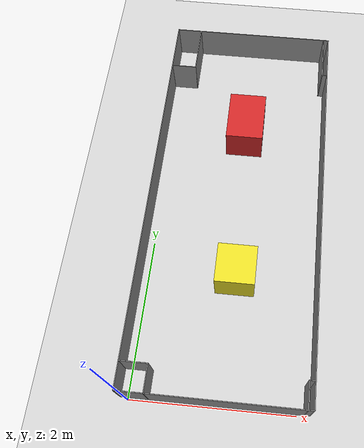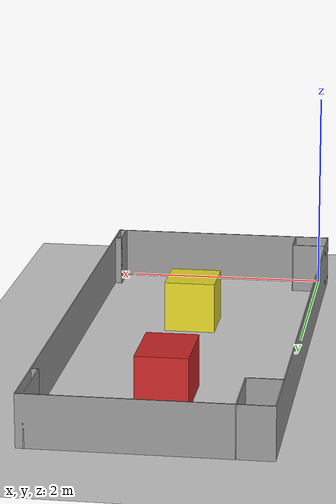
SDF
<sdf version="1.7">
 <world name="default">
  <light name="sun" type="directional">
   <pose>0 0 10 0 -0 0</pose>
   <diffuse>0.8 0.8 0.8 1</diffuse>
   <specular>0.2 0.2 0.2 1</specular>
   <attenuation>
    <range>1000</range>
    <constant>0.9</constant>
    <linear>0.01</linear>
    <quadratic>0.001</quadratic>
   </attenuation>
   <direction>-0.5 0.1 -0.9</direction>
   <spot><inner_angle>0</inner_angle><outer_angle>0</outer_angle><falloff>0</falloff></spot>
  </light>
  <model name="ground_plane">
   <static>1</static>
   <link name="link">
    <collision name="collision">
     <geometry><plane><normal>0 0 1</normal><size>100 100</size></plane></geometry>
     <surface>
      <contact><collide_bitmask>65535</collide_bitmask></contact>
      <friction><ode><mu>100</mu><mu2>50</mu2></ode></friction>
     </surface>
    </collision>
    <visual name="visual">
     <cast_shadows>0</cast_shadows>
     <geometry><plane><normal>0 0 1</normal><size>100 100</size></plane></geometry>
     <material>
      <script><uri>file://media/materials/scripts/gazebo.material</uri><name>Gazebo/Grey</name></script>
     </material>
    </visual>
   </link>
  </model>
  <gravity>0 0 -9.8</gravity>
  <magnetic_field>6e-06 2.3e-05 -4.2e-05</magnetic_field>
  <atmosphere type="adiabatic"/>
  <physics type="ode">
   <max_step_size>0.001</max_step_size>
   <real_time_factor>1</real_time_factor>
   <real_time_update_rate>1000</real_time_update_rate>
  </physics>
  <scene><ambient>0.4 0.4 0.4 1</ambient><background>0.7 0.7 0.7 1</background><shadows>1</shadows></scene>
  <spherical_coordinates>
   <surface_model>EARTH_WGS84</surface_model>
   <latitude_deg>0</latitude_deg>
   <longitude_deg>0</longitude_deg>
   <elevation>0</elevation>
   <heading_deg>0</heading_deg>
  </spherical_coordinates>
  <model name="c205">
   <pose>1.03173 2.65805 0 0 -0 0</pose>
   <link name="Wall_12">
    <collision name="Wall_12_Collision">
     <geometry><box><size>5.27 0.01 0.5</size></box></geometry>
     <pose>0 0 0.25 0 -0 0</pose>
    </collision>
    <visual name="Wall_12_Visual">
     <pose>0 0 0.25 0 -0 0</pose>
     <geometry><box><size>5.27 0.01 0.5</size></box></geometry>
     <material>
      <script><uri>file://media/materials/scripts/gazebo.material</uri><name>Gazebo/Grey</name></script>
      <ambient>1 1 1 0.1</ambient>
     </material>
     <meta><layer>0</layer></meta>
    </visual>
    <pose>-1.125 0.000538 0 0 -0 1.5708</pose>
   </link>
   <link name="Wall_17">
    <collision name="Wall_17_Collision">
     <geometry><box><size>2.26 0.01 0.5</size></box></geometry>
     <pose>0 0 0.25 0 -0 0</pose>
    </collision>
    <visual name="Wall_17_Visual">
     <pose>0 0 0.25 0 -0 0</pose>
     <geometry><box><size>2.26 0.01 0.5</size></box></geometry>
     <material>
      <script><uri>file://media/materials/scripts/gazebo.material</uri><name>Gazebo/Grey</name></script>
      <ambient>1 1 1 0.1</ambient>
     </material>
     <meta><layer>0</layer></meta>
    </visual>
    <pose>-0 2.63054 0 0 -0 0</pose>
   </link>
   <link name="Wall_19">
    <collision name="Wall_19_Collision">
     <geometry><box><size>5.27 0.01 0.5</size></box></geometry>
     <pose>0 0 0.25 0 -0 0</pose>
    </collision>
    <visual name="Wall_19_Visual">
     <pose>0 0 0.25 0 -0 0</pose>
     <geometry><box><size>5.27 0.01 0.5</size></box></geometry>
     <material>
      <script><uri>file://media/materials/scripts/gazebo.material</uri><name>Gazebo/Grey</name></script>
      <ambient>1 1 1 0.1</ambient>
     </material>
     <meta><layer>0</layer></meta>
    </visual>
    <pose>1.125 0.000538 0 0 -0 -1.5708</pose>
   </link>
   <link name="Wall_2">
    <collision name="Wall_2_Collision">
     <geometry><box><size>2.26 0.01 0.5</size></box></geometry>
     <pose>0 0 0.25 0 -0 0</pose>
    </collision>
    <visual name="Wall_2_Visual">
     <pose>0 0 0.25 0 -0 0</pose>
     <geometry><box><size>2.26 0.01 0.5</size></box></geometry>
     <material>
      <script><uri>file://media/materials/scripts/gazebo.material</uri><name>Gazebo/Grey</name></script>
      <ambient>1 1 1 0.1</ambient>
     </material>
     <meta><layer>0</layer></meta>
    </visual>
    <pose>-0 -2.62946 0 0 -0 0</pose>
   </link>
   <link name="Wall_27">
    <collision name="Wall_27_Collision">
     <geometry><box><size>0.35 0.01 0.5</size></box></geometry>
     <pose>0 0 0.25 0 -0 0</pose>
    </collision>
    <visual name="Wall_27_Visual">
     <pose>0 0 0.25 0 -0 0</pose>
     <geometry><box><size>0.35 0.01 0.5</size></box></geometry>
     <material>
      <script><uri>file://media/materials/scripts/gazebo.material</uri><name>Gazebo/Grey</name></script>
      <ambient>1 1 1 0.1</ambient>
     </material>
     <meta><layer>0</layer></meta>
    </visual>
    <pose>-0.955 -2.30046 0 0 -0 0</pose>
   </link>
   <link name="Wall_28">
    <collision name="Wall_28_Collision">
     <geometry><box><size>0.340151 0.01 0.5</size></box></geometry>
     <pose>0 0 0.25 0 -0 0</pose>
    </collision>
    <visual name="Wall_28_Visual">
     <pose>0 0 0.25 0 -0 0</pose>
     <geometry><box><size>0.340151 0.01 0.5</size></box></geometry>
     <material>
      <script><uri>file://media/materials/scripts/gazebo.material</uri><name>Gazebo/Grey</name></script>
      <ambient>1 1 1 0.1</ambient>
     </material>
     <meta><layer>0</layer></meta>
    </visual>
    <pose>-0.785 -2.46546 0 0 -0 -1.5708</pose>
   </link>
   <link name="Wall_30">
    <collision name="Wall_30_Collision">
     <geometry><box><size>0.35 0.01 0.5</size></box></geometry>
     <pose>0 0 0.25 0 -0 0</pose>
    </collision>
    <visual name="Wall_30_Visual">
     <pose>0 0 0.25 0 -0 0</pose>
     <geometry><box><size>0.35 0.01 0.5</size></box></geometry>
     <material>
      <script><uri>file://media/materials/scripts/gazebo.material</uri><name>Gazebo/Grey</name></script>
      <ambient>1 1 1 0.1</ambient>
     </material>
     <meta><layer>0</layer></meta>
    </visual>
    <pose>-0.955 1.95054 0 0 -0 0</pose>
   </link>
   <link name="Wall_31">
    <collision name="Wall_31_Collision">
     <geometry><box><size>0.69 0.01 0.5</size></box></geometry>
     <pose>0 0 0.25 0 -0 0</pose>
    </collision>
    <visual name="Wall_31_Visual">
     <pose>0 0 0.25 0 -0 0</pose>
     <geometry><box><size>0.69 0.01 0.5</size></box></geometry>
     <material>
      <script><uri>file://media/materials/scripts/gazebo.material</uri><name>Gazebo/Grey</name></script>
      <ambient>1 1 1 0.1</ambient>
     </material>
     <meta><layer>0</layer></meta>
    </visual>
    <pose>-0.785 2.29054 0 0 -0 1.5708</pose>
   </link>
   <link name="Wall_34">
    <collision name="Wall_34_Collision">
     <geometry><box><size>0.66 0.01 0.5</size></box></geometry>
     <pose>0 0 0.25 0 -0 0</pose>
    </collision>
    <visual name="Wall_34_Visual">
     <pose>0 0 0.25 0 -0 0</pose>
     <geometry><box><size>0.66 0.01 0.5</size></box></geometry>
     <material>
      <script><uri>file://media/materials/scripts/gazebo.material</uri><name>Gazebo/Grey</name></script>
      <ambient>1 1 1 0.1</ambient>
     </material>
     <meta><layer>0</layer></meta>
    </visual>
    <pose>1.055 2.30554 0 0 -0 -1.5708</pose>
   </link>
   <link name="Wall_35">
    <collision name="Wall_35_Collision">
     <geometry><box><size>0.08 0.01 0.5</size></box></geometry>
     <pose>0 0 0.25 0 -0 0</pose>
    </collision>
    <visual name="Wall_35_Visual">
     <pose>0 0 0.25 0 -0 0</pose>
     <geometry><box><size>0.08 0.01 0.5</size></box></geometry>
     <material>
      <script><uri>file://media/materials/scripts/gazebo.material</uri><name>Gazebo/Grey</name></script>
      <ambient>1 1 1 0.1</ambient>
     </material>
     <meta><layer>0</layer></meta>
    </visual>
    <pose>1.09 1.98054 0 0 -0 0</pose>
   </link>
   <link name="Wall_39">
    <collision name="Wall_39_Collision">
     <geometry><box><size>0.33 0.01 0.5</size></box></geometry>
     <pose>0 0 0.25 0 -0 0</pose>
    </collision>
    <visual name="Wall_39_Visual">
     <pose>0 0 0.25 0 -0 0</pose>
     <geometry><box><size>0.33 0.01 0.5</size></box></geometry>
     <material>
      <script><uri>file://media/materials/scripts/gazebo.material</uri><name>Gazebo/Grey</name></script>
      <ambient>1 1 1 0.1</ambient>
     </material>
     <meta><layer>0</layer></meta>
    </visual>
    <pose>1.055 -2.46946 0 0 -0 1.5708</pose>
   </link>
   <link name="Wall_40">
    <collision name="Wall_40_Collision">
     <geometry><box><size>0.08 0.01 0.5</size></box></geometry>
     <pose>0 0 0.25 0 -0 0</pose>
    </collision>
    <visual name="Wall_40_Visual">
     <pose>0 0 0.25 0 -0 0</pose>
     <geometry><box><size>0.08 0.01 0.5</size></box></geometry>
     <material>
      <script><uri>file://media/materials/scripts/gazebo.material</uri><name>Gazebo/Grey</name></script>
      <ambient>1 1 1 0.1</ambient>
     </material>
     <meta><layer>0</layer></meta>
    </visual>
    <pose>1.09 -2.30946 0 0 -0 0</pose>
   </link>
   <static>1</static>
  </model>
  <model name="box2">
   <link name="link_2">
    <inertial>
     <mass>10</mass>
     <inertia><ixx>1.66667</ixx><ixy>0</ixy><ixz>0</ixz><iyy>1.66667</iyy><iyz>0</iyz><izz>1.66667</izz></inertia>
    </inertial>
    <visual name="visual">
     <geometry><box><size>0.5 0.7 0.5</size></box></geometry>
     <material>
      <lighting>1</lighting>
      <script><uri>file://media/materials/scripts/gazebo.material</uri><name>Gazebo/Red</name></script>
      <shader type="pixel"><normal_map>__default__</normal_map></shader>
      <ambient>0 1 0 1</ambient>
      <diffuse>0 1 0 1</diffuse>
      <specular>0.1 0.1 0.1 1</specular>
      <emissive>0 0 0 1</emissive>
     </material>
    </visual>
    <collision name="collision">
     <geometry><box><size>0.5 0.7 0.5</size></box></geometry>
     <surface>
      <friction>
       <ode><mu>1</mu><mu2>1</mu2><fdir1>0 0 0</fdir1><slip1>0</slip1><slip2>0</slip2></ode>
       <torsional>
        <coefficient>1</coefficient>
        <patch_radius>0</patch_radius>
        <surface_radius>0</surface_radius>
        <use_patch_radius>1</use_patch_radius>
        <ode><slip>0</slip></ode>
       </torsional>
      </friction>
      <bounce><restitution_coefficient>0</restitution_coefficient><threshold>1e+06</threshold></bounce>
      <contact>
       <collide_without_contact>0</collide_without_contact>
       <collide_without_contact_bitmask>1</collide_without_contact_bitmask>
       <collide_bitmask>1</collide_bitmask>
       <ode>
        <soft_cfm>0</soft_cfm>
        <soft_erp>0.2</soft_erp>
        <kp>1e+13</kp>
        <kd>1</kd>
        <max_vel>0.01</max_vel>
        <min_depth>0</min_depth>
       </ode>
       <bullet>
        <split_impulse>1</split_impulse>
        <split_impulse_penetration_threshold>-0.01</split_impulse_penetration_threshold>
        <soft_cfm>0</soft_cfm>
        <soft_erp>0.2</soft_erp>
        <kp>1e+13</kp>
        <kd>1</kd>
       </bullet>
      </contact>
     </surface>
    </collision>
   </link>
   <static>0</static>
   <pose>1.06 3.83 0.25 0 -0 0</pose>
  </model>
  <model name="box1">
   <link name="link_2">
    <inertial>
     <mass>10</mass>
     <inertia><ixx>1.66667</ixx><ixy>0</ixy><ixz>0</ixz><iyy>1.66667</iyy><iyz>0</iyz><izz>1.66667</izz></inertia>
    </inertial>
    <visual name="visual">
     <geometry><box><size>0.5 0.5 0.5</size></box></geometry>
     <material>
      <lighting>1</lighting>
      <script><uri>file://media/materials/scripts/gazebo.material</uri><name>Gazebo/Yellow</name></script>
      <shader type="pixel"><normal_map>__default__</normal_map></shader>
      <ambient>0 1 0 1</ambient>
      <diffuse>0 1 0 1</diffuse>
      <specular>0.1 0.1 0.1 1</specular>
      <emissive>0 0 0 1</emissive>
     </material>
    </visual>
    <collision name="collision">
     <geometry><box><size>0.5 0.7 0.5</size></box></geometry>
     <surface>
      <friction>
       <ode><mu>1</mu><mu2>1</mu2><fdir1>0 0 0</fdir1><slip1>0</slip1><slip2>0</slip2></ode>
       <torsional>
        <coefficient>1</coefficient>
        <patch_radius>0</patch_radius>
        <surface_radius>0</surface_radius>
        <use_patch_radius>1</use_patch_radius>
        <ode><slip>0</slip></ode>
       </torsional>
      </friction>
      <bounce><restitution_coefficient>0</restitution_coefficient><threshold>1e+06</threshold></bounce>
      <contact>
       <collide_without_contact>0</collide_without_contact>
       <collide_without_contact_bitmask>1</collide_without_contact_bitmask>
       <collide_bitmask>1</collide_bitmask>
       <ode>
        <soft_cfm>0</soft_cfm>
        <soft_erp>0.2</soft_erp>
        <kp>1e+13</kp>
        <kd>1</kd>
        <max_vel>0.01</max_vel>
        <min_depth>0</min_depth>
       </ode>
       <bullet>
        <split_impulse>1</split_impulse>
        <split_impulse_penetration_threshold>-0.01</split_impulse_penetration_threshold>
        <soft_cfm>0</soft_cfm>
        <soft_erp>0.2</soft_erp>
        <kp>1e+13</kp>
        <kd>1</kd>
       </bullet>
      </contact>
     </surface>
    </collision>
   </link>
   <static>0</static>
   <pose>1.13 1.65 0.25 0 -0 8e-06</pose>
  </model>
 </world>
</sdf>
